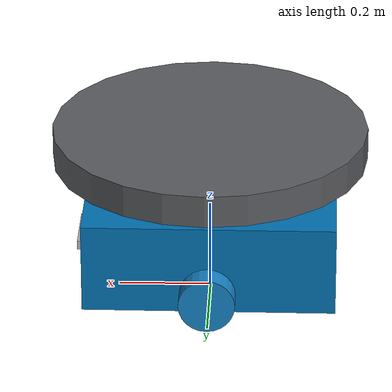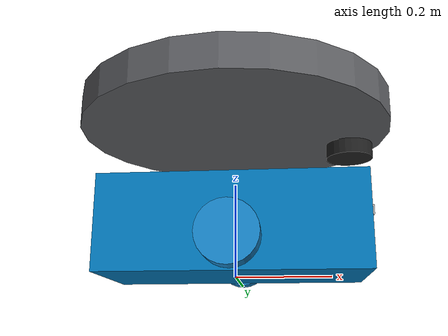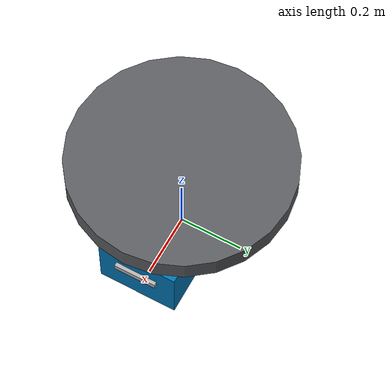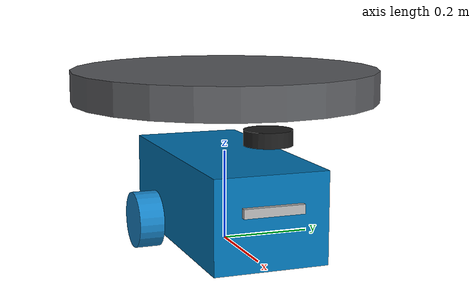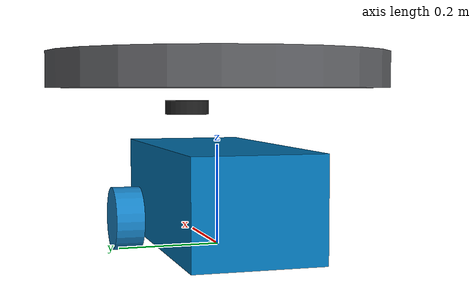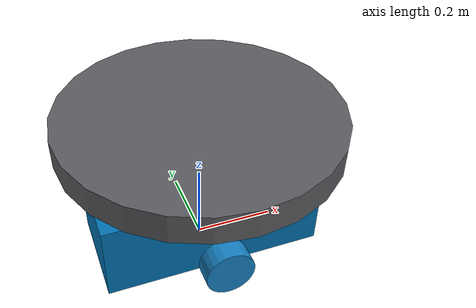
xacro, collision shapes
<?xml version="1.0" ?>
<robot name="freight_capstone" xmlns:xacro="http://ros.org/wiki/xacro">

  <xacro:include filename="$(find freight_description)/urdf/freight.gazebo.xacro"/>

  <xacro:property name="r200_cam_rgb_px" value="0.005"/>
  <xacro:property name="r200_cam_rgb_py" value="0.018"/>
  <xacro:property name="r200_cam_rgb_pz" value="0.013"/>
  <xacro:property name="r200_cam_depth_offset" value="0.01"/>

  <link name="base_footprint"/>

  <joint name="base_joint" type="fixed">
    <parent link="base_footprint"/>
    <child link="base_link" />
    <origin xyz="0 0 0" rpy="0 0 0"/>
  </joint>

  <link name="base_link">
    <visual>
      <origin xyz="0 0 0" rpy="0 0 0"/>
      <geometry>
        <mesh filename="package://freight_description/meshes/freight/base_link.dae"/>
      </geometry>
      <material name="">
        <color rgba="0.356 0.361 0.376 1" />
      </material>
    </visual>

    <collision>
      <origin xyz="0 0 0.35" rpy="0 0 0"/>
      <geometry>
        <cylinder length="0.07" radius="0.34"/>
      </geometry>
    </collision>

    <inertial>
      <origin xyz="0 0 0.175" rpy="0 0 0"/>
      <mass value="5.0"/>
      <inertia ixx="0.16354167" ixy="0.0" ixz="0.0"
               iyy="0.16354167" iyz="0.0"
               izz="0.225" />
    </inertial>
  </link>

  <joint name="wheel_left_joint" type="continuous">
    <parent link="base_link"/>
    <child link="wheel_left_link"/>
    <origin xyz="0.0012914 0.18738 0.060325" rpy="-1.57 0 0"/>
    <axis xyz="0 0 1"/>
  </joint>

  <link name="wheel_left_link">
    <visual>
      <origin rpy="1.57 0 0" xyz="0 0 0" />
      <geometry>
        <mesh filename="package://freight_description/meshes/freight/l_wheel_link.STL" />
      </geometry>
      <material name="">
        <color rgba="0.086 0.506 0.767 1" />
      </material>
    </visual>

    <collision>
      <origin xyz="0 0 0" rpy="0 0 0"/>
      <geometry>
        <cylinder length="0.054" radius="0.061"/>
      </geometry>
    </collision>

    <inertial>
      <origin xyz="0 0 0" />
      <mass value="0.5" />
      <inertia ixx="1.9607009e-04" ixy="0.0" ixz="0.0"
               iyy="1.9636542e-05" iyz="0.0"
               izz="3.6339172e-05" />
      </inertial>
  </link>

  <joint name="wheel_right_joint" type="continuous">
    <parent link="base_link"/>
    <child link="wheel_right_link"/>
    <origin xyz="0.0012914 -0.18738 0.060325" rpy="-1.57 0 0"/>
    <axis xyz="0 0 1"/>
  </joint>

  <link name="wheel_right_link">
    <visual>
      <origin rpy="1.57 0 0" xyz="0 0 0" />
      <geometry>
        <mesh filename="package://freight_description/meshes/freight/l_wheel_link.STL" />
      </geometry>
      <material name="">
        <color rgba="0.086 0.506 0.767 1" />
      </material>
    </visual>

    <collision>
      <origin xyz="0 0 0" rpy="0 0 0"/>
      <geometry>
        <cylinder length="0.054" radius="0.061"/>
      </geometry>
    </collision>

    <inertial>
      <origin xyz="0 0 0" />
      <mass value="0.5" />
      <inertia ixx="1.9607009e-04" ixy="0.0" ixz="0.0"
               iyy="1.9636542e-05" iyz="0.0"
               izz="3.6339172e-05" />
      </inertial>
  </link>

  <joint name="caster_back_right_joint" type="fixed">
    <parent link="base_link"/>
    <child link="caster_back_right_link"/>
    <origin xyz="0 0 0.1" rpy="0 0 0"/>
  </joint>

  <link name="caster_back_right_link">
    <collision>
      <origin xyz="0 0.001 0" rpy="0 0 0"/>
      <geometry>
        <box size="0.55 0.25 0.199"/>
      </geometry>
    </collision>

    <inertial>
      <origin xyz="0 0 0" />
      <mass value="0.005" />
      <inertia ixx="0.001" ixy="0.0" ixz="0.0"
               iyy="0.001" iyz="0.0"
               izz="0.001" />
    </inertial>
  </link>

  <joint name="imu_joint" type="fixed">
    <parent link="base_link"/>
    <child link="imu_link"/>
    <origin xyz="0.0 0 0.068" rpy="0 0 0"/>
  </joint>

  <link name="imu_link"/>

  <joint name="scan_joint" type="fixed">
    <parent link="base_link"/>
    <child link="base_scan"/>
    <origin rpy="0 0 0" xyz="0.235 0 0.2778" />
  </joint>

  <link name="base_scan">
    <visual>
      <origin xyz="0 0 0" rpy="0 0 0"/>
      <geometry>
        <mesh filename="package://freight_description/meshes/sensors/lds.stl" scale="0.001 0.001 0.001"/>
      </geometry>
      <material name="dark"/>
    </visual>

    <collision>
      <origin xyz="0.015 0 -0.0065" rpy="0 0 0"/>
      <geometry>
        <cylinder length="0.0315" radius="0.05"/>
      </geometry>
    </collision>

    <inertial>
      <mass value="0.114" />
      <origin xyz="0 0 0" />
      <inertia ixx="0.001" ixy="0.0" ixz="0.0"
               iyy="0.001" iyz="0.0"
               izz="0.001" />
    </inertial>
  </link>

  <joint name="camera_joint" type="fixed">
    <origin xyz="0.278 -0.064 0.12" rpy="0 0 0"/>
    <parent link="base_link"/>
    <child link="camera_link"/>
  </joint>

  <link name="camera_link">
    <visual>
     <origin xyz="0 0 0" rpy="1.57 0 1.57"/>
      <geometry>
       <mesh filename="package://freight_description/meshes/sensors/r200.dae" />
      </geometry>
    </visual>
    <collision>
      <origin xyz="0.003 0.065 0.007" rpy="0 0 0"/>
      <geometry>
        <box size="0.012 0.132 0.020"/>
      </geometry>
    </collision>
  </link>

  <joint name="camera_rgb_joint" type="fixed">
    <origin xyz="${r200_cam_rgb_px} ${r200_cam_rgb_py} ${r200_cam_rgb_pz}" rpy="0 0 0"/>
    <parent link="camera_link"/>
    <child link="camera_rgb_frame"/>
  </joint>
  <link name="camera_rgb_frame"/>

  <joint name="camera_rgb_optical_joint" type="fixed">
    <origin xyz="0 0 0" rpy="-1.57 0 -1.57"/>
    <parent link="camera_rgb_frame"/>
    <child link="camera_rgb_optical_frame"/>
  </joint>
  <link name="camera_rgb_optical_frame"/>

  <joint name="camera_depth_joint" type="fixed">
    <origin xyz="${r200_cam_rgb_px} ${r200_cam_rgb_py + r200_cam_depth_offset} ${r200_cam_rgb_pz}" rpy="0 0 0"/>
    <parent link="camera_link"/>
    <child link="camera_depth_frame"/>
  </joint>
  <link name="camera_depth_frame"/>

  <joint name="camera_depth_optical_joint" type="fixed">
    <origin xyz="0 0 0" rpy="-1.57 0 -1.57"/>
    <parent link="camera_depth_frame"/>
    <child link="camera_depth_optical_frame"/>
  </joint>
  <link name="camera_depth_optical_frame"/>

</robot>
